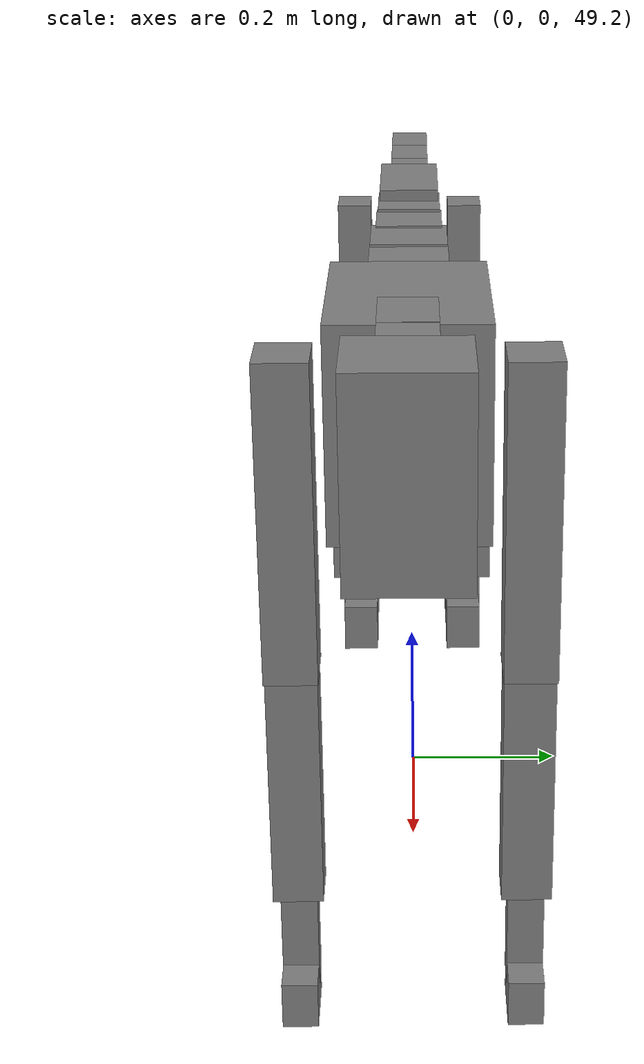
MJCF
<mujoco model="dog">

    <default>
        <joint armature="0.02" stiffness="1" damping="0.2" limited="true"/>
        <geom condim="3" friction="1 0.05 0.05" margin="0.01"/>
        <motor ctrllimited="true" ctrlrange="-1.0 1.0" forcelimited="true" gear="50"/>
    </default>

    <compiler inertiafromgeom="true" angle="radian"/>

    <option timestep="0.016" iterations="50" tolerance="1e-10" solver="Newton" jacobian="dense" cone="pyramidal"/>

    <size nconmax="20000" njmax="60000" nstack="5000000"/>
    <visual>
        <map force="0.1" zfar="30"/>
        <rgba haze="0.15 0.25 0.35 1"/>
        <quality shadowsize="2048"/>
        <global offwidth="800" offheight="800"/>
    </visual>

    <asset>
        <texture type="skybox" builtin="gradient" rgb1="0.3 0.5 0.7" rgb2="0 0 0" width="512" height="512"/>
        <texture name="texplane" type="2d" builtin="checker" rgb1=".2 .3 .4" rgb2=".1 0.15 0.2" width="512" height="512"
                 mark="cross" markrgb=".8 .8 .8"/>
        <texture name="texgeom" type="cube" builtin="flat" mark="cross" width="127" height="1278" rgb1="0.8 0.6 0.4"
                 rgb2="0.8 0.6 0.4" markrgb="1 1 1" random="0.01"/>

        <material name="matplane" reflectance="0.3" texture="texplane" texrepeat="1 1" texuniform="true"/>
        <material name="matgeom" texture="texgeom" texuniform="true" rgba="0.8 0.6 .4 1"/>
    </asset>

    <worldbody>
        <geom name="floor" pos="0 0 0" size="0 0 .25" type="plane" material="matplane" condim="3"/>

        <light directional="false" diffuse=".2 .2 .2" specular="0 0 0" pos="0 0 5" dir="0 0 -1" castshadow="false"/>
        <light mode="targetbodycom" target="torso" directional="false" diffuse=".8 .8 .8" specular="0.3 0.3 0.3"
               pos="0 0 4.0" dir="0 0 -1"/>

        <body name="root" pos="0 0 50">
            <freejoint name="root_1"/>
            <geom type="box" pos="0 0 -0.02" size="0.0774  0.0358  0.063" density="2030"/>

            <body name="spine1" pos="0.054 0 0">
                <joint name="spine1_y" axis="0 1 0" range="0 0.7" limited="true"/>
                <geom type="box" pos="0.02375 0 -0.03" size="0.04375  0.0375  0.05985" density="2030"/>

                <body name="spine2" pos="0.0612 0 0">
                    <joint name="spine2_y" axis="0 1 0" range="-0.15 0.15" limited="true"/>
                    <geom type="box" pos="0.03555  0  -0.04" size="0.04055  0.039  0.06615" density="2030"/>

                    <body name="spine3" pos="0.0730 0 0">
                        <joint name="spine3_y" axis="0 1 0" range="-0.15 0.15" limited="true"/>
                        <geom type="box" pos="0.03555  0  -0.057" size="0.04555  0.0445  0.081" density="2030"/>

                        <body name="spine4" pos="0.0780 0 0">
                            <joint name="spine4_y" axis="0 1 0" range="-0.15 0.15" limited="true"/>
                            <geom type="box" pos="0.05265  0  -0.07" size="0.05265  0.045  0.09135" density="2030"/>

                            <body name="torso" pos="0.1082 0 0">
                                <joint name="torso_y" axis="0 1 0" range="-0.15 0.15" limited="true"/>
                                <geom type="box" pos="0.11925  0  -0.085" size="0.11925  0.085  0.11745"
                                      density="2030"/>

                                <body name="neck1" pos="0.2160  0   0.0180">
                                    <joint name="neck1_y" axis="0 1 0" range="-1.2  -1" limited="true"/>
                                    <geom type="box" pos="0.0423  0  0" size="0.0423  0.03  0.036" density="2325"/>

                                    <body name="neck2" pos="0.0853  0  0">
                                        <joint name="neck2_y" axis="0 1 0" range="0.1  0" limited="true"/>
                                        <geom type="box" pos="0.0423  0  0" size="0.0423  0.03  0.036" density="2325"/>

                                        <body name="head" pos="0.0853  0  0">
                                            <joint name="head_y" axis="0 1 0" range="-0.3  -0.2" limited="true"/>
                                            <geom type="box" pos="0.0531  0  -0.055" size="0.0531  0.06  0.1044"
                                                  density="4030"/>

                                        </body>
                                    </body>
                                </body>

                                <body name="front_shoulder" pos="0.156  0   -0.0480">
                                    <joint name="front_shoulder_y" axis="0 1 0" range="-1 1.5" limited="true"/>
                                    <geom type="box" pos="0 0.13 -0.1555" size="0.0349  0.0298  0.1821" density="1158"/>
                                    <geom type="box" pos="0 -0.13 -0.1555" size="0.0349  0.0298  0.1821"
                                          density="1158"/>

                                    <body name="front_elbow" pos="0  0  -0.3110">
                                        <joint name="front_elbow_y" axis="0 1 0" range="-2 0" limited="true"/>
                                        <geom type="box" pos="0 0.13 -0.1535" size="0.0282  0.0288  0.1535"
                                              density="1081"/>
                                        <geom type="box" pos="0 -0.13 -0.1535" size="0.0282  0.0288  0.1535"
                                              density="1081"/>

                                        <body name="front_wrist" pos="0  0  -0.3071">
                                            <joint name="front_wrist_y" axis="0 1 0" range="-0.2 0" limited="true"/>
                                            <geom type="box" pos="0 0.13 -0.0541" size="0.0189  0.0210  0.0673"
                                                  density="1664"/>
                                            <geom type="box" pos="0 -0.13 -0.0541" size="0.0189  0.0210  0.0673"
                                                  density="1664"/>

                                            <body name="front_finger_end" pos="0  0  -0.1082">
                                                <joint name="front_finger_y" axis="0 1 0" range="-0.4 1"
                                                       limited="true"/>
                                                <geom type="box" pos="0.0206  0.13  -0.0137"
                                                      size="0.0378  0.0206  0.0287" density="1515"/>
                                                <geom type="box" pos="0.0206  -0.13  -0.0137"
                                                      size="0.0378  0.0206  0.0287" density="1515"/>

                                            </body>

                                        </body>
                                    </body>
                                </body>

                            </body>
                        </body>
                    </body>
                </body>
            </body>

            <body name="back_hip" pos="-0.03 0 -0.018">
                <joint name="back_hip_y" axis="0 1 0" range="-1.5 0.3" limited="true"/>
                <geom type="box" pos="0 0.07 -0.1145" size="0.0266  0.0209  0.1373" density="1154"/>
                <geom type="box" pos="0 -0.07 -0.1145" size="0.0266  0.0209  0.1373" density="1154"/>

                <body name="back_knee" pos="0  0  -0.2290">
                    <joint name="back_knee_y" axis="0 1 0" range="0 2.8" limited="true"/>
                    <geom type="box" pos="0 0.07 -0.1246" size="0.0373  0.0368  0.1402" density="1227"/>
                    <geom type="box" pos="0 -0.07 -0.1246" size="0.0373  0.0368  0.1402" density="1227"/>

                    <body name="back_ankle" pos="0  0  -0.2492">
                        <joint name="back_ankle_y" axis="0 1 0" range="-2.2 0" limited="true"/>
                        <geom type="box" pos="0 0.07 -0.0317" size="0.0238  0.0238  0.0430" density="1284"/>
                        <geom type="box" pos="0 -0.07 -0.0317" size="0.0238  0.0238  0.0430" density="1284"/>

                        <body name="back_toe_end" pos="0  0  -0.0635">
                            <joint name="back_toe_y" axis="0 1 0" range="-0.4 1" limited="true"/>
                            <geom type="box" pos="0.0223  0.07  -0.0164" size="0.0408  0.0223  0.0314" density="1515"/>
                            <geom type="box" pos="0.0223  -0.07  -0.0164" size="0.0408  0.0223  0.0314" density="1515"/>

                        </body>
                    </body>
                </body>
            </body>

            <body name="tail1" pos="-0.074 0 -0.006">
                <joint name="tail1_y" axis="0 1 0" range="-0.2 0.2" limited="true"/>
                <geom type="box" pos="-0.0536  0  0" size="0.045  0.025  0.0175" density="1587"/>

                <body name="tail2" pos="-0.09 0 0">
                    <joint name="tail2_y" axis="0 1 0" range="-0.2 0.2" limited="true"/>
                    <geom type="box" pos="-0.0536  0  0" size="0.045  0.025  0.0175" density="1587"/>

                    <body name="tail3" pos="-0.09 0 0">
                        <joint name="tail3_y" axis="0 1 0" range="-0.2 0.2" limited="true"/>
                        <geom type="box" pos="-0.0536  0  0" size="0.045  0.025  0.0175" density="1587"/>

                        <body name="tail4" pos="-0.09 0 0">
                            <joint name="tail4_y" axis="0 1 0" range="-0.2 0.2" limited="true"/>
                            <geom type="box" pos="-0.0536  0  0" size="0.045  0.025  0.0175" density="1587"/>

                        </body>
                    </body>
                </body>
            </body>
        </body>
    </worldbody>

    <actuator>
        <motor joint="spine1_y" forcerange="-150 150     "/>
        <motor joint="spine2_y" forcerange="-150 150     "/>
        <motor joint="spine3_y" forcerange="-150 150     "/>
        <motor joint="spine4_y" forcerange="-150 150     "/>
        <motor joint="torso_y" forcerange="-150 150     "/>
        <motor joint="neck1_y" forcerange="-100 100       "/>
        <motor joint="neck2_y" forcerange="-100 100       "/>
        <motor joint="head_y" forcerange="-150 150       "/>
        <motor joint="front_shoulder_y" forcerange="-107.67 191.29"/>
        <motor joint="front_elbow_y" forcerange="-123.36 185.94"/>
        <motor joint="front_wrist_y" forcerange="-65.07 102.70"/>
        <motor joint="front_finger_y" forcerange="-33.30 36.61"/>
        <motor joint="back_hip_y" forcerange="-205.28 273.15"/>
        <motor joint="back_knee_y" forcerange="-352.94 382.46"/>
        <motor joint="back_angle_y" forcerange="-228.64 51.57"/>
        <motor joint="back_toe_y" forcerange="-48.26 49.87"/>
        <motor joint="tail1_y" forcerange="-50 50     "/>
        <motor joint="tail2_y" forcerange="-50 50     "/>
        <motor joint="tail3_y" forcerange="-50 50     "/>
        <motor joint="tail4_y" forcerange="-50 50     "/>
    </actuator>
</mujoco>
